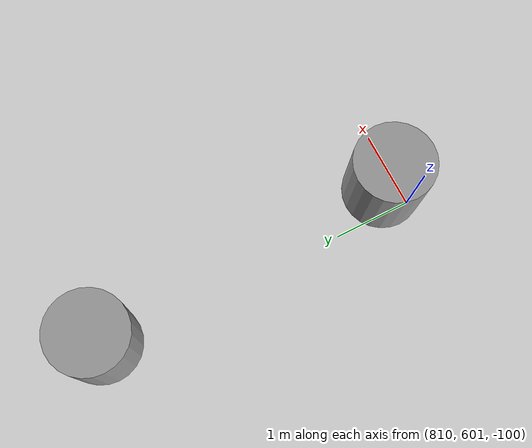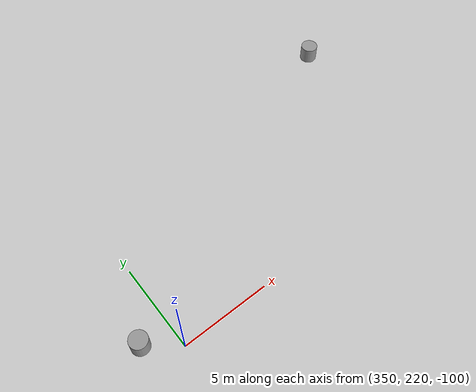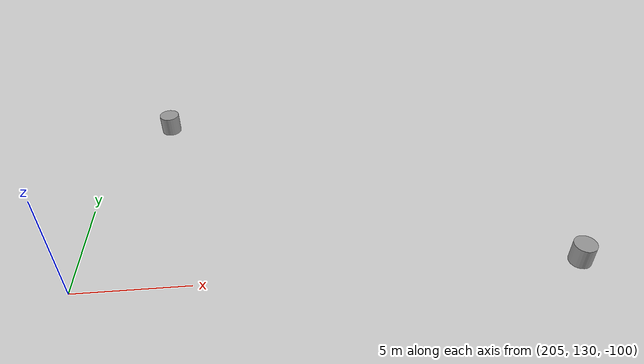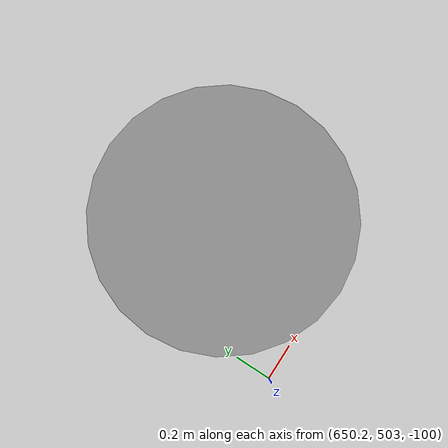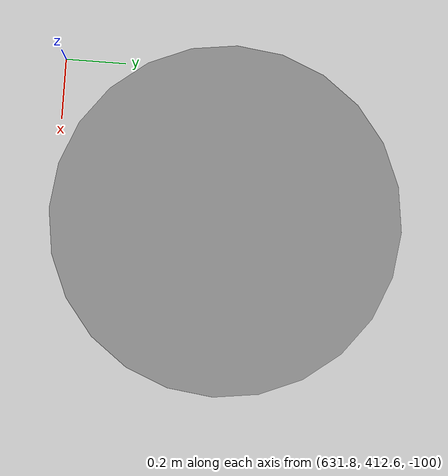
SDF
<sdf version="1.6">
 <world name="lake">
  <physics name="default_physics" default="1" type="ode">
   <max_step_size>0.002</max_step_size>
   <real_time_factor>1</real_time_factor>
   <real_time_update_rate>500</real_time_update_rate>
   <ode>
    <solver>
     <type>quick</type>
     <iters>50</iters>
     <sor>0.5</sor>
     <use_dynamic_moi_rescaling>0</use_dynamic_moi_rescaling>
    </solver>
    <constraints>
     <cfm>0</cfm>
     <erp>0.2</erp>
     <contact_max_correcting_vel>100</contact_max_correcting_vel>
     <contact_surface_layer>0.001</contact_surface_layer>
    </constraints>
   </ode>
  </physics>
  <scene>
   <ambient>0.01 0.01 0.01 1</ambient>
   <sky><clouds><speed>12</speed></clouds></sky>
   <shadows>1</shadows>
   <background>0.7 0.7 0.7 1</background>
  </scene>
  <light name="sun" type="directional">
   <pose>0 0 10 0 -0 0</pose>
   <diffuse>0.8 0.8 0.8 1</diffuse>
   <specular>0.1 0.1 0.1 1</specular>
   <attenuation>
    <range>1000</range>
    <constant>0.9</constant>
    <linear>0.01</linear>
    <quadratic>0.001</quadratic>
   </attenuation>
   <direction>-0.5 0.5 -1</direction>
  </light>
  <gravity>0 0 -9.8</gravity>
  <magnetic_field>6e-06 2.3e-05 -4.2e-05</magnetic_field>
  <atmosphere type="adiabatic"/>
  <spherical_coordinates>
   <surface_model>EARTH_WGS84</surface_model>
   <latitude_deg>0</latitude_deg>
   <longitude_deg>0</longitude_deg>
   <elevation>0</elevation>
   <heading_deg>0</heading_deg>
  </spherical_coordinates>
  <model name="unit_cylinder_0">
   <pose>207.811 141.489 -99.45 2.1e-05 8e-06 -0.003448</pose>
   <link name="link">
    <inertial>
     <mass>1</mass>
     <inertia><ixx>0.145833</ixx><ixy>0</ixy><ixz>0</ixz><iyy>0.145833</iyy><iyz>0</iyz><izz>0.125</izz></inertia>
    </inertial>
    <collision name="collision">
     <geometry><cylinder><radius>0.5</radius><length>1</length></cylinder></geometry>
    </collision>
    <visual name="visual">
     <geometry><cylinder><radius>0.5</radius><length>1</length></cylinder></geometry>
     <material>
      <script><name>Gazebo/Grey</name><uri>file://media/materials/scripts/gazebo.material</uri></script>
     </material>
    </visual>
   </link>
  </model>
  <model name="unit_cylinder_1">
   <pose>226.459 129.896 -99.45 -1e-05 2.3e-05 0.000196</pose>
   <link name="link">
    <inertial>
     <mass>1</mass>
     <inertia><ixx>0.145833</ixx><ixy>0</ixy><ixz>0</ixz><iyy>0.145833</iyy><iyz>0</iyz><izz>0.125</izz></inertia>
    </inertial>
    <collision name="collision">
     <geometry><cylinder><radius>0.5</radius><length>1</length></cylinder></geometry>
    </collision>
    <visual name="visual">
     <geometry><cylinder><radius>0.5</radius><length>1</length></cylinder></geometry>
     <material>
      <script><name>Gazebo/Grey</name><uri>file://media/materials/scripts/gazebo.material</uri></script>
     </material>
    </visual>
   </link>
  </model>
  <model name="unit_cylinder_2">
   <pose>666.87 448.674 -99.45 -2.2e-05 -7e-06 -0.000674</pose>
   <link name="link">
    <inertial>
     <mass>1</mass>
     <inertia><ixx>0.145833</ixx><ixy>0</ixy><ixz>0</ixz><iyy>0.145833</iyy><iyz>0</iyz><izz>0.125</izz></inertia>
    </inertial>
    <collision name="collision">
     <geometry><cylinder><radius>0.5</radius><length>1</length></cylinder></geometry>
    </collision>
    <visual name="visual">
     <geometry><cylinder><radius>0.5</radius><length>1</length></cylinder></geometry>
     <material>
      <script><name>Gazebo/Grey</name><uri>file://media/materials/scripts/gazebo.material</uri></script>
     </material>
    </visual>
   </link>
  </model>
  <model name="unit_cylinder_3">
   <pose>650.654 503.578 -99.45 -2.1e-05 -7e-06 -0.000404</pose>
   <link name="link">
    <inertial>
     <mass>1</mass>
     <inertia><ixx>0.145833</ixx><ixy>0</ixy><ixz>0</ixz><iyy>0.145833</iyy><iyz>0</iyz><izz>0.125</izz></inertia>
    </inertial>
    <collision name="collision">
     <geometry><cylinder><radius>0.5</radius><length>1</length></cylinder></geometry>
    </collision>
    <visual name="visual">
     <geometry><cylinder><radius>0.5</radius><length>1</length></cylinder></geometry>
     <material>
      <script><name>Gazebo/Grey</name><uri>file://media/materials/scripts/gazebo.material</uri></script>
     </material>
    </visual>
   </link>
  </model>
  <model name="unit_cylinder_4">
   <pose>672.362 488.34 -99.45 -2.2e-05 -7e-06 -0.000682</pose>
   <link name="link">
    <inertial>
     <mass>1</mass>
     <inertia><ixx>0.145833</ixx><ixy>0</ixy><ixz>0</ixz><iyy>0.145833</iyy><iyz>0</iyz><izz>0.125</izz></inertia>
    </inertial>
    <collision name="collision">
     <geometry><cylinder><radius>0.5</radius><length>1</length></cylinder></geometry>
    </collision>
    <visual name="visual">
     <geometry><cylinder><radius>0.5</radius><length>1</length></cylinder></geometry>
     <material>
      <script><name>Gazebo/Grey</name><uri>file://media/materials/scripts/gazebo.material</uri></script>
     </material>
    </visual>
   </link>
  </model>
  <model name="unit_cylinder_5">
   <pose>810.288 601.232 -99.45 -2.2e-05 -7e-06 -0.000205</pose>
   <link name="link">
    <inertial>
     <mass>1</mass>
     <inertia><ixx>0.145833</ixx><ixy>0</ixy><ixz>0</ixz><iyy>0.145833</iyy><iyz>0</iyz><izz>0.125</izz></inertia>
    </inertial>
    <collision name="collision">
     <geometry><cylinder><radius>0.5</radius><length>1</length></cylinder></geometry>
    </collision>
    <visual name="visual">
     <geometry><cylinder><radius>0.5</radius><length>1</length></cylinder></geometry>
     <material>
      <script><name>Gazebo/Grey</name><uri>file://media/materials/scripts/gazebo.material</uri></script>
     </material>
    </visual>
   </link>
  </model>
  <model name="unit_cylinder_6">
   <pose>901.1 691.027 -99.45 2.3e-05 5e-06 0.000184</pose>
   <link name="link">
    <inertial>
     <mass>1</mass>
     <inertia><ixx>0.145833</ixx><ixy>0</ixy><ixz>0</ixz><iyy>0.145833</iyy><iyz>0</iyz><izz>0.125</izz></inertia>
    </inertial>
    <collision name="collision">
     <geometry><cylinder><radius>0.5</radius><length>1</length></cylinder></geometry>
    </collision>
    <visual name="visual">
     <geometry><cylinder><radius>0.5</radius><length>1</length></cylinder></geometry>
     <material>
      <script><name>Gazebo/Grey</name><uri>file://media/materials/scripts/gazebo.material</uri></script>
     </material>
    </visual>
   </link>
  </model>
  <model name="unit_cylinder_7">
   <pose>810.089 605.211 -99.45 -2.2e-05 -7e-06 -0.000205</pose>
   <link name="link">
    <inertial>
     <mass>1</mass>
     <inertia><ixx>0.145833</ixx><ixy>0</ixy><ixz>0</ixz><iyy>0.145833</iyy><iyz>0</iyz><izz>0.125</izz></inertia>
    </inertial>
    <collision name="collision">
     <geometry><cylinder><radius>0.5</radius><length>1</length></cylinder></geometry>
    </collision>
    <visual name="visual">
     <geometry><cylinder><radius>0.5</radius><length>1</length></cylinder></geometry>
     <material>
      <script><name>Gazebo/Grey</name><uri>file://media/materials/scripts/gazebo.material</uri></script>
     </material>
    </visual>
   </link>
  </model>
  <model name="unit_cylinder_8">
   <pose>367.582 230.652 -99.45 -1e-05 2.5e-05 0.000203</pose>
   <link name="link">
    <inertial>
     <mass>1</mass>
     <inertia><ixx>0.145833</ixx><ixy>0</ixy><ixz>0</ixz><iyy>0.145833</iyy><iyz>0</iyz><izz>0.125</izz></inertia>
    </inertial>
    <collision name="collision">
     <geometry><cylinder><radius>0.5</radius><length>1</length></cylinder></geometry>
    </collision>
    <visual name="visual">
     <geometry><cylinder><radius>0.5</radius><length>1</length></cylinder></geometry>
     <material>
      <script><name>Gazebo/Grey</name><uri>file://media/materials/scripts/gazebo.material</uri></script>
     </material>
    </visual>
   </link>
  </model>
  <model name="unit_cylinder_9">
   <pose>632.385 413.172 -99.45 -2.1e-05 -5e-06 -0.000445</pose>
   <link name="link">
    <inertial>
     <mass>1</mass>
     <inertia><ixx>0.145833</ixx><ixy>0</ixy><ixz>0</ixz><iyy>0.145833</iyy><iyz>0</iyz><izz>0.125</izz></inertia>
    </inertial>
    <collision name="collision">
     <geometry><cylinder><radius>0.5</radius><length>1</length></cylinder></geometry>
    </collision>
    <visual name="visual">
     <geometry><cylinder><radius>0.5</radius><length>1</length></cylinder></geometry>
     <material>
      <script><name>Gazebo/Grey</name><uri>file://media/materials/scripts/gazebo.material</uri></script>
     </material>
    </visual>
   </link>
  </model>
  <model name="unit_cylinder_10">
   <pose>348.315 221.326 -99.45 -1.9e-05 3.4e-05 0.000486</pose>
   <link name="link">
    <inertial>
     <mass>1</mass>
     <inertia><ixx>0.145833</ixx><ixy>0</ixy><ixz>0</ixz><iyy>0.145833</iyy><iyz>0</iyz><izz>0.125</izz></inertia>
    </inertial>
    <collision name="collision">
     <geometry><cylinder><radius>0.5</radius><length>1</length></cylinder></geometry>
    </collision>
    <visual name="visual">
     <geometry><cylinder><radius>0.5</radius><length>1</length></cylinder></geometry>
     <material>
      <script><name>Gazebo/Grey</name><uri>file://media/materials/scripts/gazebo.material</uri></script>
     </material>
    </visual>
   </link>
  </model>
  <model name="unit_cylinder_11">
   <pose>617.649 581.223 -99.45 -2.2e-05 -5e-06 -0.000248</pose>
   <link name="link">
    <inertial>
     <mass>1</mass>
     <inertia><ixx>0.145833</ixx><ixy>0</ixy><ixz>0</ixz><iyy>0.145833</iyy><iyz>0</iyz><izz>0.125</izz></inertia>
    </inertial>
    <collision name="collision">
     <geometry><cylinder><radius>0.5</radius><length>1</length></cylinder></geometry>
    </collision>
    <visual name="visual">
     <geometry><cylinder><radius>0.5</radius><length>1</length></cylinder></geometry>
     <material>
      <script><name>Gazebo/Grey</name><uri>file://media/materials/scripts/gazebo.material</uri></script>
     </material>
    </visual>
   </link>
  </model>
 </world>
</sdf>
